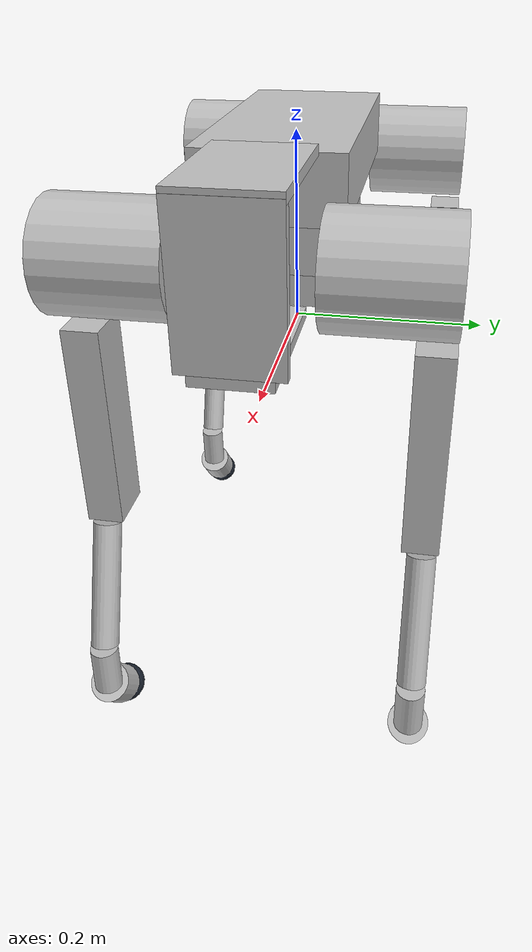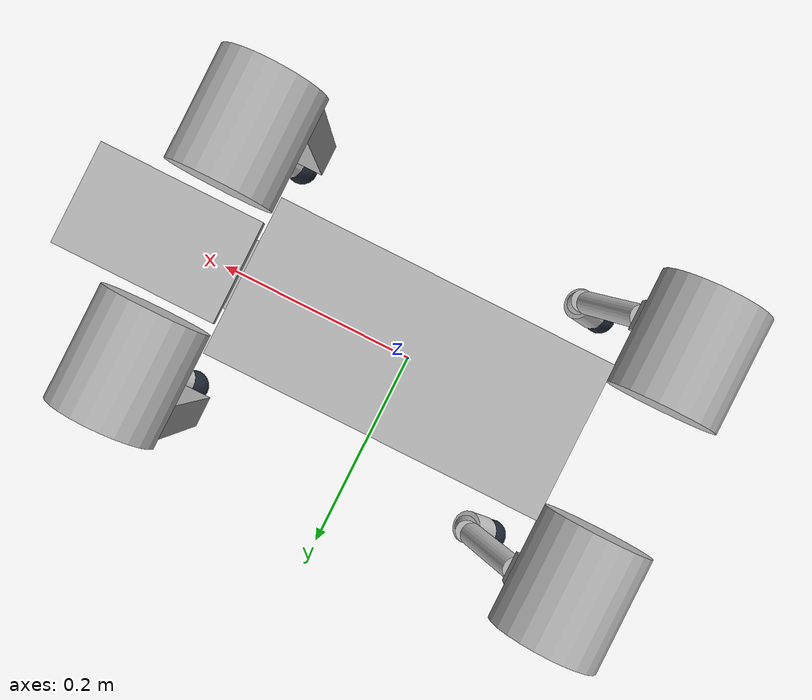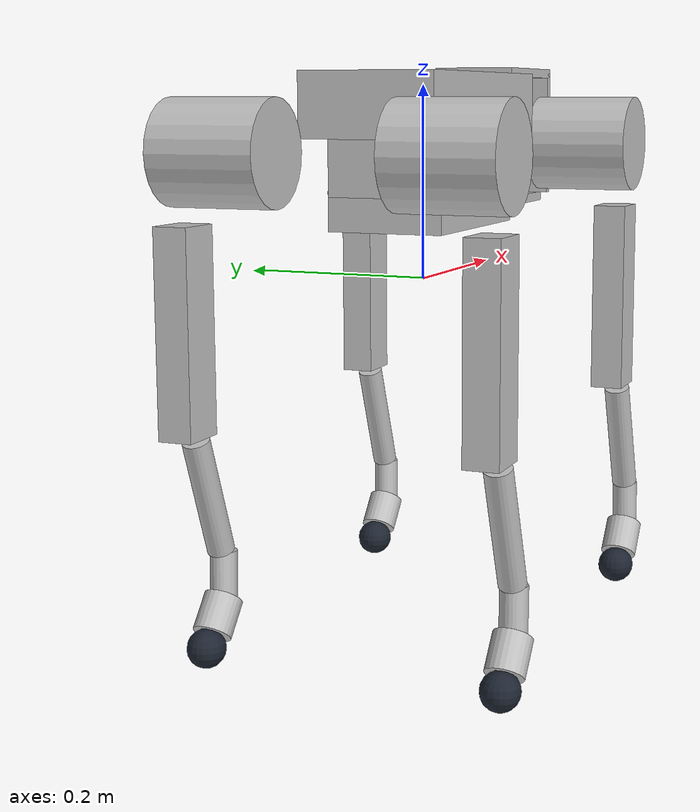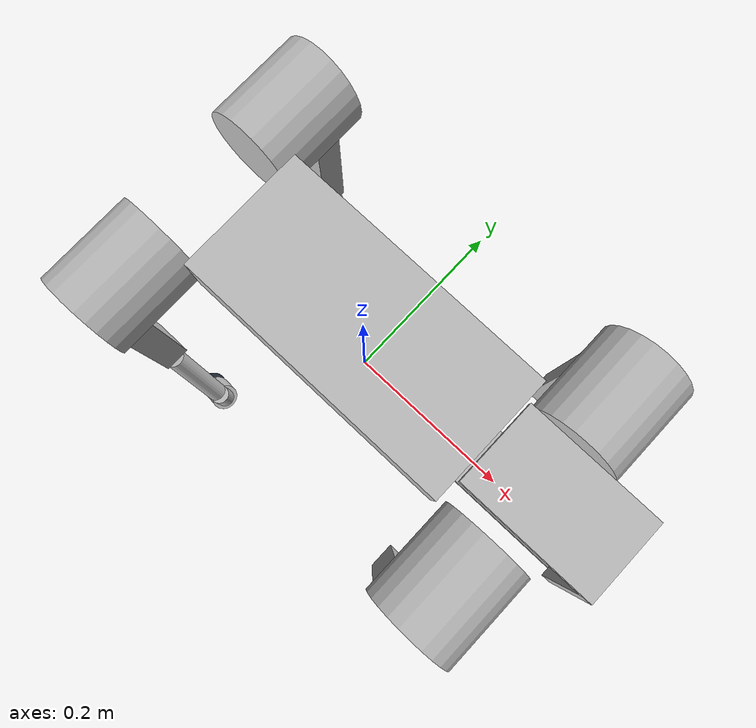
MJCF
<mujoco model="GO 2026_4_12">
  <compiler angle="radian"/>

  <worldbody>
    <body name="base_link" pos="0 0 0.2">
    <geom size="0.15 0.07 0.0325" pos="0 0 -0.02" type="box" rgba="0.75294 0.75294 0.75294 1"/>
    <geom size="0.115 0.055 0.03" pos="0 0 -0.08" type="box" rgba="0.75294 0.75294 0.75294 1"/>
    <geom size="0.105 0.06 0.02" pos="0 0 -0.125" type="box" rgba="0.75294 0.75294 0.75294 1"/>
    <geom size="0.0725 0.035 0.005" pos="0.225 0 -0.13" type="box" rgba="0.75294 0.75294 0.75294 1"/>
    <geom size="0.0725 0.045 0.005" pos="0.225 0 0.015" type="box" rgba="0.75294 0.75294 0.75294 1"/>
    <geom size="0.005 0.045 0.07" pos="0.293 0 -0.055" type="box" rgba="0.75294 0.75294 0.75294 1"/>
    <body name="FL_hip" pos="0.1566 0.060001 -0.06425">
      <inertial pos="0.05138 0.014784 5.66e-05" quat="0.695638 -0.0108304 -0.0108744 0.718229" mass="0.60559" diaginertia="0.000649581 0.000373949 0.000341469"/>
      <joint name="FL_hip_joint" range="-0.5 0.5" actuatorfrcrange="-20 20" axis="1 0 0"/>
      <geom size="0.052 0.055" pos="0.058 0.055 0" quat="0.707107 0.707107 0 0" type="cylinder" rgba="0.75294 0.75294 0.75294 1"/>
      <body name="FL_thigh" pos="0.056 0.0336 0" quat="0.707105 0 0 0.707108">
        <inertial pos="0.041449 0.004453 -0.021946" quat="0.999996 0.00289628 7.46384e-05 -1.0448e-06" mass="0.91168" diaginertia="0.0018577 0.00139833 0.00051787"/>
        <joint name="FL_thigh_joint" range="-1.2 1.6" actuatorfrcrange="-20 20" axis="1 0 0"/>
        <geom size="0.0175 0.025 0.1025" pos="0.06 0.015 -0.17" type="box" rgba="0.75294 0.75294 0.75294 1"/>
        <body name="FL_calf" pos="0.0618 0 -0.25">
          <inertial pos="5.50549e-05 -0.0216127 -0.175868" quat="0.998778 -0.0494097 0.000212935 0.000822721" mass="0.34861" diaginertia="0.00161079 0.0015434 9.93857e-05"/>
          <joint name="FL_calf_joint" range="-2.5 -0.85" actuatorfrcrange="-20 20" axis="1 0 0"/>
          <geom size="0.014 0.065" pos="0 -0.025 -0.09" quat="0.984304 -0.176483 0 0" type="cylinder" rgba="0.75294 0.75294 0.75294 1"/>
          <geom size="0.014 0.025" pos="0 -0.052 -0.178" quat="0.999851 0.0172779 0 0" type="cylinder" rgba="0.75294 0.75294 0.75294 1"/>
          <geom size="0.02 0.02" pos="0 -0.038 -0.218" quat="0.939693 0.34202 0 0" type="cylinder" rgba="0.75294 0.75294 0.75294 1"/>
          <geom size="0.02" pos="0 -0.013803 -0.24433" rgba="0.117651 0.149024 0.200004 1"/>
        </body>
      </body>
    </body>
    <body name="FR_hip" pos="0.1566 -0.059999 -0.06425">
      <inertial pos="0.05138 -0.014784 -5.66e-05" quat="0.718229 0.0108744 0.0108304 0.695638" mass="0.60559" diaginertia="0.000649581 0.000373949 0.000341469"/>
      <joint name="FR_hip_joint" range="-0.5 0.5" actuatorfrcrange="-20 20" axis="1 0 0"/>
      <geom size="0.052 0.055" pos="0.058 -0.055 0" quat="0.707107 0.707107 0 0" type="cylinder" rgba="0.75294 0.75294 0.75294 1"/>
      <body name="FR_thigh" pos="0.056 -0.0336 0" quat="0.707105 0 0 -0.707108">
        <inertial pos="0.04152 -0.0043781 -0.022024" quat="0.999998 -0.00175756 7.45387e-05 -0.000108394" mass="0.91491" diaginertia="0.0018577 0.00139911 0.000517189"/>
        <joint name="FR_thigh_joint" range="-1.6 1.2" actuatorfrcrange="-20 20" axis="1 0 0"/>
        <geom size="0.0175 0.025 0.1025" pos="0.06 -0.015 -0.17" type="box" rgba="0.75294 0.75294 0.75294 1"/>
        <body name="FR_calf" pos="0.0618 0 -0.25">
          <inertial pos="-5.50549e-05 0.0216127 -0.175868" quat="0.998778 0.0494097 -0.000212935 0.000822721" mass="0.34861" diaginertia="0.00161079 0.0015434 9.93857e-05"/>
          <joint name="FR_calf_joint" range="0.85 2.5" actuatorfrcrange="-20 20" axis="1 0 0"/>
          <geom size="0.014 0.065" pos="0 0.025 -0.09" quat="0.984304 0.176483 0 0" type="cylinder" rgba="0.75294 0.75294 0.75294 1"/>
          <geom size="0.014 0.025" pos="0 0.052 -0.178" quat="0.999851 0.0172779 0 0" type="cylinder" rgba="0.75294 0.75294 0.75294 1"/>
          <geom size="0.02 0.02" pos="0 0.038 -0.218" quat="0.939693 -0.34202 0 0" type="cylinder" rgba="0.75294 0.75294 0.75294 1"/>
          <geom size="0.02" pos="0 0.013803 -0.24433" rgba="0.117651 0.149024 0.200004 1"/>
        </body>
      </body>
    </body>
    <body name="RR_hip" pos="-0.1566 -0.059999 -0.06425" quat="-3.67321e-06 0 0 -1">
      <inertial pos="0.05138 0.014784 5.66e-05" quat="0.695638 -0.0108304 -0.0108744 0.718229" mass="0.60559" diaginertia="0.000649581 0.000373949 0.000341469"/>
      <joint name="RR_hip_joint" range="-0.5 0.5" actuatorfrcrange="-20 20" axis="1 0 0"/>
      <geom size="0.052 0.055" pos="0.058 0.055 0" quat="0.707107 0.707107 0 0" type="cylinder" rgba="0.75294 0.75294 0.75294 1"/>
      <body name="RR_thigh" pos="0.056 0.0336 0" quat="0.707105 0 0 0.707108">
        <inertial pos="0.04152 -0.0043784 -0.022024" quat="0.999998 -0.00175756 7.45387e-05 -0.000108394" mass="0.91491" diaginertia="0.0018577 0.00139911 0.000517189"/>
        <joint name="RR_thigh_joint" range="-1.6 1.2" actuatorfrcrange="-20 20" axis="1 0 0"/>
        <geom size="0.0175 0.025 0.1025" pos="0.06 -0.015 -0.17" type="box" rgba="0.75294 0.75294 0.75294 1"/>
        <body name="RR_calf" pos="0.0618 0 -0.25">
          <inertial pos="-5.50549e-05 0.0216127 -0.175868" quat="0.998778 0.0494097 -0.000212935 0.000822721" mass="0.34861" diaginertia="0.00161079 0.0015434 9.93857e-05"/>
          <joint name="RR_calf_joint" range="0.85 2.5" actuatorfrcrange="-20 20" axis="1 0 0"/>
          <geom size="0.014 0.065" pos="0 0.025 -0.09" quat="0.984304 0.176483 0 0" type="cylinder" rgba="0.75294 0.75294 0.75294 1"/>
          <geom size="0.014 0.025" pos="0 0.052 -0.178" quat="0.999851 -0.0172779 0 0" type="cylinder" rgba="0.75294 0.75294 0.75294 1"/>
          <geom size="0.02 0.02" pos="0 0.038 -0.218" quat="0.939693 -0.34202 0 0" type="cylinder" rgba="0.75294 0.75294 0.75294 1"/>
          <geom size="0.02" pos="0 0.013803 -0.24433" rgba="0.117651 0.149024 0.200004 1"/>
        </body>
      </body>
    </body>
    <body name="RL_hip" pos="-0.1566 0.060001 -0.06425" quat="-3.67321e-06 0 0 -1">
      <inertial pos="0.05138 -0.014784 -5.66e-05" quat="0.718229 0.0108744 0.0108304 0.695638" mass="0.60559" diaginertia="0.000649581 0.000373949 0.000341469"/>
      <joint name="RL_hip_joint" range="-0.5 0.5" actuatorfrcrange="-20 20" axis="1 0 0"/>
      <geom size="0.052 0.055" pos="0.058 -0.055 0" quat="0.707107 0.707107 0 0" type="cylinder" rgba="0.75294 0.75294 0.75294 1"/>
      <body name="RL_thigh" pos="0.056 -0.0336 0" quat="0.707105 0 0 -0.707108">
        <inertial pos="0.041449 0.0044527 -0.021947" quat="0.999996 0.00289628 7.46384e-05 -1.0448e-06" mass="0.91168" diaginertia="0.0018577 0.00139833 0.00051787"/>
        <joint name="RL_thigh_joint" range="-1.2 1.6" actuatorfrcrange="-20 20" axis="1 0 0"/>
        <geom size="0.0175 0.025 0.1025" pos="0.06 0.015 -0.17" type="box" rgba="0.75294 0.75294 0.75294 1"/>
        <body name="RL_calf" pos="0.0618 0 -0.25">
          <inertial pos="5.50549e-05 -0.0216127 -0.175868" quat="0.998778 -0.0494097 0.000212935 0.000822721" mass="0.34861" diaginertia="0.00161079 0.0015434 9.93857e-05"/>
          <joint name="RL_calf_joint" range="-2.5 -0.85" actuatorfrcrange="-20 20" axis="1 0 0"/>
          <geom size="0.014 0.065" pos="0 -0.025 -0.09" quat="0.984304 -0.176483 0 0" type="cylinder" rgba="0.75294 0.75294 0.75294 1"/>
          <geom size="0.014 0.025" pos="0 -0.052 -0.178" quat="0.999851 0.0172779 0 0" type="cylinder" rgba="0.75294 0.75294 0.75294 1"/>
          <geom size="0.02 0.02" pos="0 -0.038 -0.218" quat="0.939693 0.34202 0 0" type="cylinder" rgba="0.75294 0.75294 0.75294 1"/>
          <geom size="0.02" pos="0 -0.013803 -0.24433" rgba="0.117651 0.149024 0.200004 1"/>
        </body>
      </body>
    </body>
    </body>
  </worldbody>
  <actuator>
    <motor name="FL_hip_act" joint="FL_hip_joint" />
    <motor name="FL_thigh_act" joint="FL_thigh_joint" />
    <motor name="FL_calf_act" joint="FL_calf_joint" />
    <motor name="FR_calf_act" joint="FR_calf_joint" />
    <motor name="FR_hip_act" joint="FR_hip_joint" />
    <motor name="FR_thigh_act" joint="FR_thigh_joint" />
    <motor name="RL_thigh_act" joint="RL_thigh_joint" />
    <motor name="RL_calf_act" joint="RL_calf_joint" />
    <motor name="RL_hip_act" joint="RL_hip_joint" />
    <motor name="RR_thigh_act" joint="RR_thigh_joint" />
    <motor name="RR_calf_act" joint="RR_calf_joint" />
    <motor name="RR_hip_act" joint="RR_hip_joint" />
  </actuator>
</mujoco>
